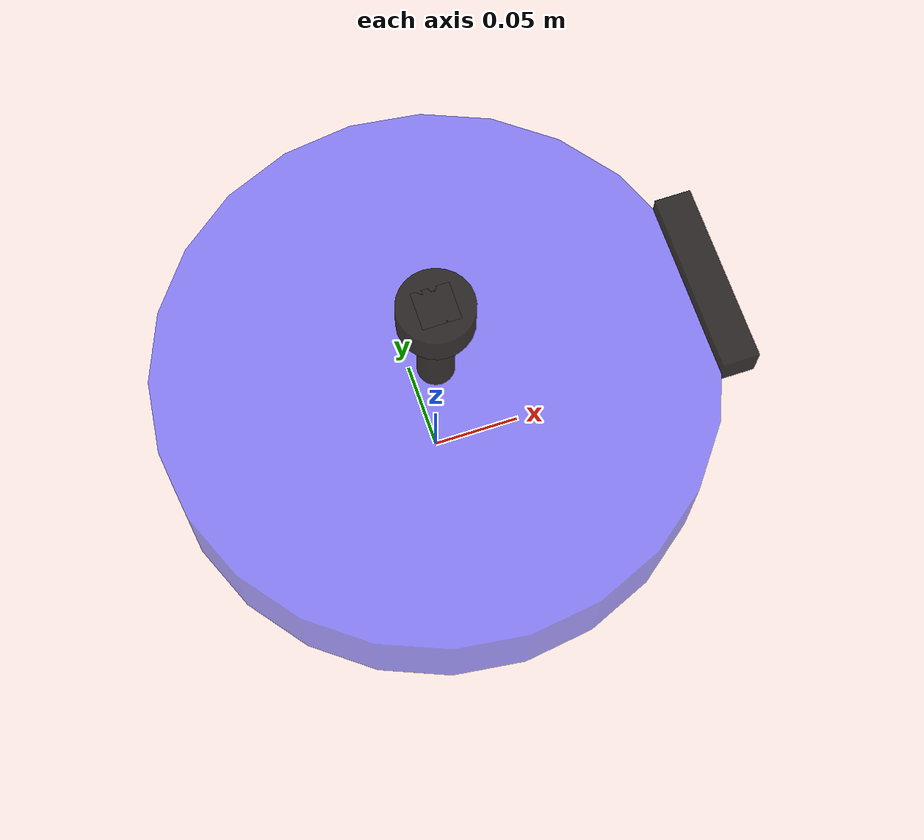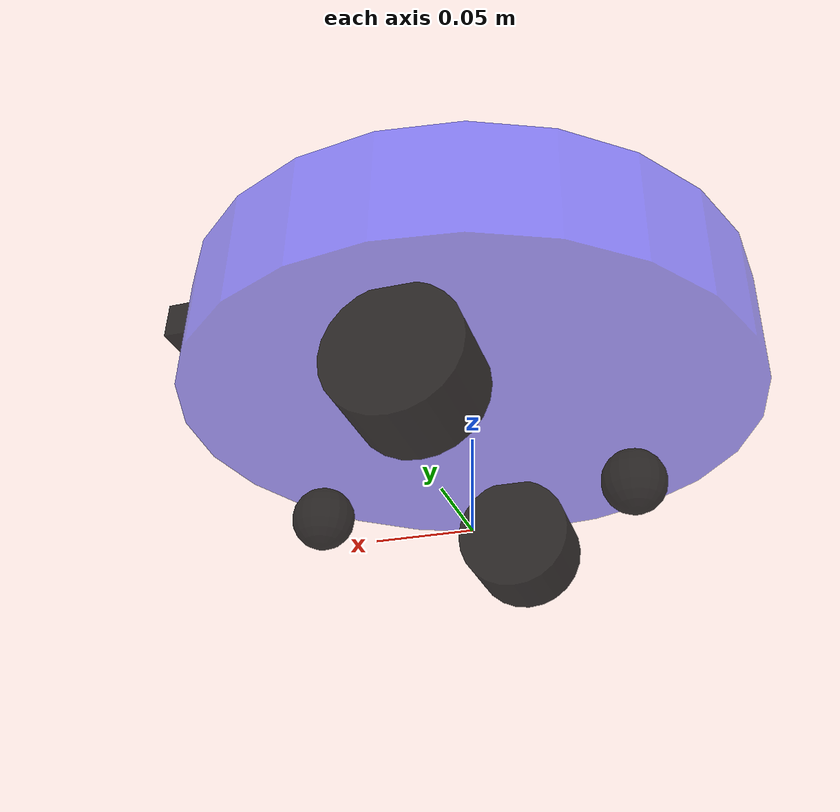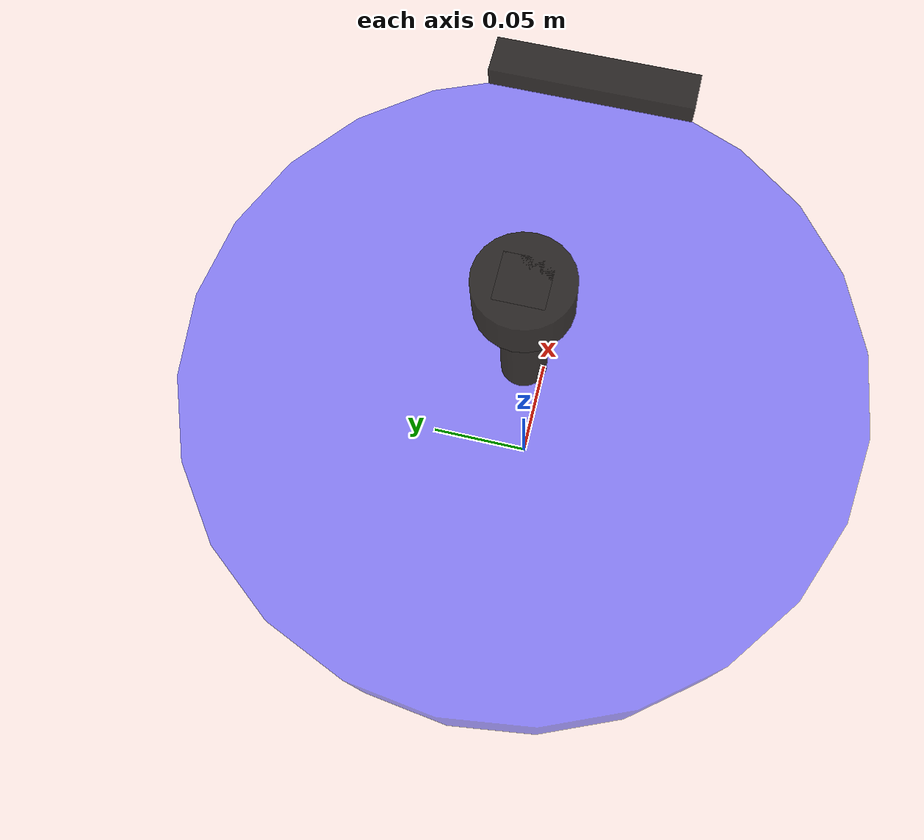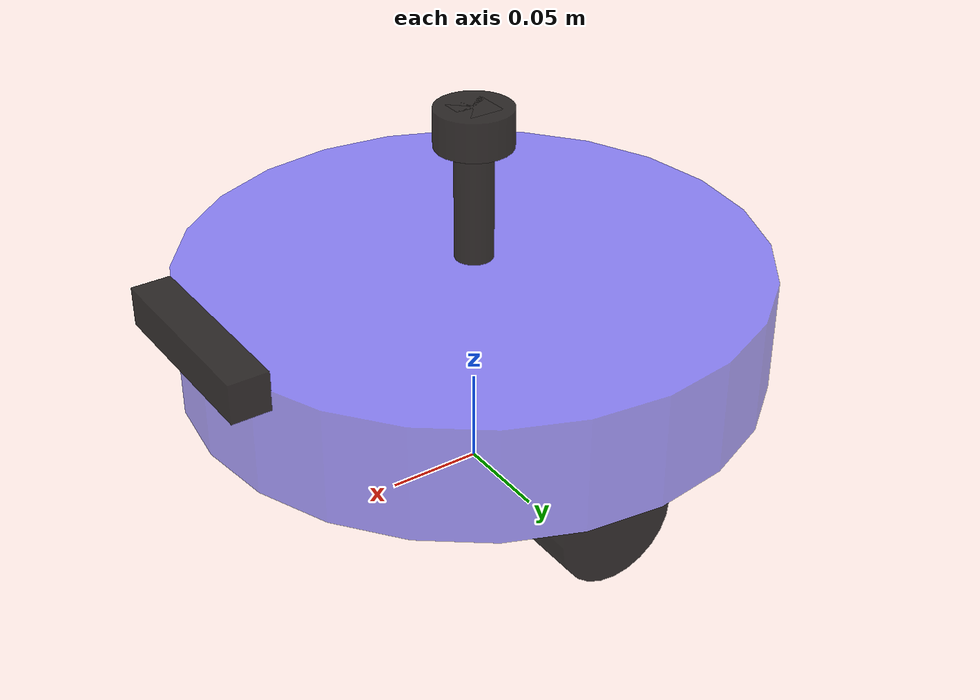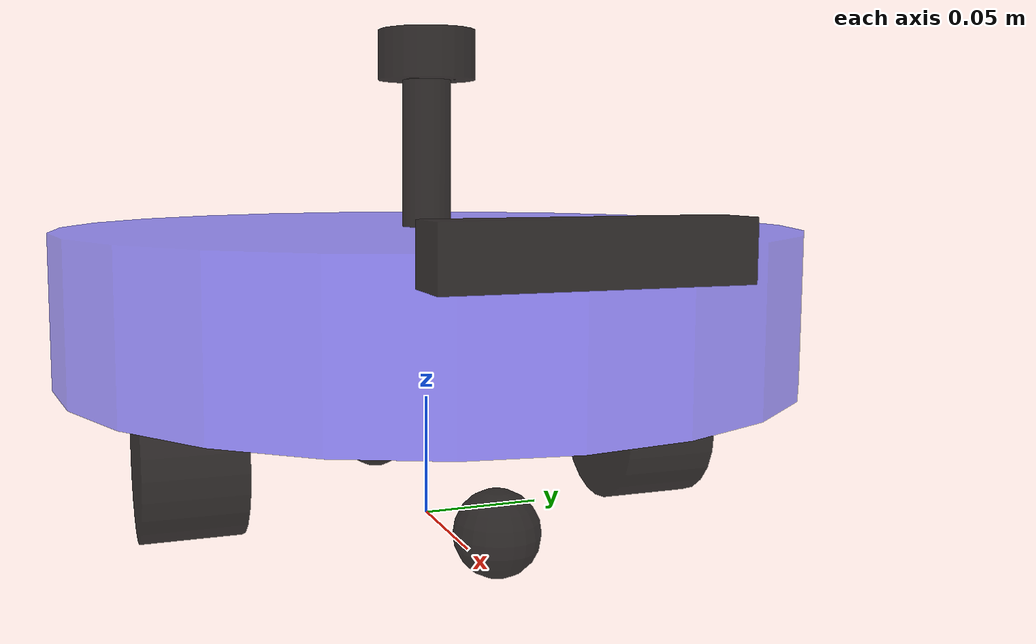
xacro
<?xml version="1.0"?>
<robot xmlns:xacro="http://www.ros.org/wiki/xacro" name="fishbot">
    <xacro:include filename="$(find gazebo_module)/urdf/fishbot/base.urdf.xacro" />
    <!-- 传感器组件 -->
    <xacro:include filename="$(find gazebo_module)/urdf/fishbot/sensor/imu.urdf.xacro" />
    <xacro:include filename="$(find gazebo_module)/urdf/fishbot/sensor/laser.urdf.xacro" />
    <xacro:include filename="$(find gazebo_module)/urdf/fishbot/sensor/camera.urdf.xacro" />
     <!-- 执行器组件 -->
    <xacro:include filename="$(find gazebo_module)/urdf/fishbot/actuator/wheel.urdf.xacro" />
    <xacro:include filename="$(find gazebo_module)/urdf/fishbot/actuator/caster.urdf.xacro" />

    <xacro:base_xacro length="0.06" radius="0.15" />
    <!-- 传感器 -->
    <xacro:imu_xacro xyz="0 0 0.10" />
    <xacro:laser_xacro xyz="0 0 0.05" />
    <xacro:camera_xacro xyz="0.15 0 0.03" />
    <!-- 执行器主动轮+从动轮 -->
    <xacro:wheel_xacro wheel_name="left" xyz="0 0.10 -0.06" />
    <xacro:wheel_xacro wheel_name="right" xyz="0 -0.10 -0.06" />
    <xacro:caster_xacro caster_name="front" xyz="0.08 0.0 -0.076" />
    <xacro:caster_xacro caster_name="back" xyz="-0.08 0.0 -0.076" />
    <!-- Gazebo 插件 -->
    <xacro:include filename="$(find gazebo_module)/urdf/fishbot/plugins/gazebo_control_plugin.xacro" />
    <xacro:gazebo_control_plugin />
    <xacro:include filename="$(find gazebo_module)/urdf/fishbot/fishbot.ros2_control.xacro" />
    <xacro:include filename="$(find gazebo_module)/urdf/fishbot/plugins/gazebo_sensor_plugin.xacro" />
    <xacro:gazebo_sensor_plugin />
</robot>

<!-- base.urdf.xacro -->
<robot xmlns:xacro="http://www.ros.org/wiki/xacro">
   <xacro:include filename="$(find gazebo_module)/urdf/fishbot/common_inertia.xacro" />
    <xacro:macro name="base_xacro" params="length radius">
     <link name="base_footprint" />

        <joint name="base_joint" type="fixed">
            <parent link="base_footprint" />
            <child link="base_link" />
            <origin xyz="0.0 0.0 0.092" rpy="0 0 0" />
        </joint>

        <link name="base_link">
            <visual>
                <origin xyz="0 0 0.0" rpy="0 0 0" />
                <geometry>
                    <cylinder length="${length}" radius="${radius}" />
                </geometry>
                <material name="blue">
                    <color rgba="0.1 0.1 1.0 0.5"/>
                </material>
            </visual>
            <collision>
                <origin xyz="0 0 0.0" rpy="0 0 0" />
                <geometry>
                    <cylinder length="${length}" radius="${radius}" />
                </geometry>
                <material name="blue">
                    <color rgba="0.1 0.1 1.0 0.5"/>
                </material>
            </collision>
            <xacro:cylinder_inertia m="1.0" r="${radius}" h="${length}"/>
        </link>

    </xacro:macro>

</robot>

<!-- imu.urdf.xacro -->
<robot xmlns:xacro="http://www.ros.org/wiki/xacro">
   <xacro:include filename="$(find gazebo_module)/urdf/fishbot/common_inertia.xacro" />
    <xacro:macro name="imu_xacro" params="xyz">
        <link name="imu_link">
            <visual>
                <origin xyz="0 0 00" rpy="0 0 0" />
                <geometry>
                    <box size="0.02 0.02 0.02" />
                </geometry>
                <material name="black">
                    <color rgba="0 0 0 0.8" />
                </material>
            </visual>
            <collision>
                <origin xyz="0 0 0" rpy="0 0 0" />
                <geometry>
                    <box size="0.02 0.02 0.02" />
                </geometry>
                <material name="black">
                    <color rgba="0 0 0 0.8" />
                </material>
            </collision>
            <xacro:box_inertia m="0.01" w="0.02" d="0.02" h="0.02"/>
        </link>

        <joint name="imu_joint" type="fixed">
            <parent link="base_link" />
            <child link="imu_link" />
            <origin xyz="${xyz}" />
        </joint>
    </xacro:macro>
</robot>

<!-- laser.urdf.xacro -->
<robot xmlns:xacro="http://www.ros.org/wiki/xacro">
   <xacro:include filename="$(find gazebo_module)/urdf/fishbot/common_inertia.xacro" />
    <xacro:macro name="laser_xacro" params="xyz">
        <gazebo reference="laser_cylinder_link">
            <material>Gazebo/Black</material>
        </gazebo>
        <gazebo reference="laser_link">
            <material>Gazebo/Black</material>
        </gazebo>

        <!-- ============雷达支撑杆================ -->
        <link name="laser_cylinder_link">
            <visual>
                <origin xyz="0 0 0" rpy="0 0 0" />
                <geometry>
                    <cylinder length="0.10" radius="0.01" />
                </geometry>
                <material name="black">
                    <color rgba="0.0 0.0 0.0 0.8" />
                </material>
            </visual>
            <collision>
                <origin xyz="0 0 0" rpy="0 0 0" />
                <geometry>
                    <cylinder length="0.10" radius="0.01" />
                </geometry>
                <material name="black">
                    <color rgba="0.0 0.0 0.0 0.8" />
                </material>
            </collision>
            <xacro:cylinder_inertia m="0.01" r="0.01" h="0.10" />
        </link>

        <joint name="laser_cylinder_joint" type="fixed">
            <parent link="base_link" />
            <child link="laser_cylinder_link" />
            <origin xyz="${xyz}" />
        </joint>

        <!-- ============雷达================ -->
        <link name="laser_link">
            <visual>
                <origin xyz="0 0 0" rpy="0 0 0" />
                <geometry>
                    <cylinder length="0.02" radius="0.02" />
                </geometry>
                <material name="black">
                    <color rgba="0.0 0.0 0.0 0.8" />
                </material>
            </visual>
            <collision>
                <origin xyz="0 0 0" rpy="0 0 0" />
                <geometry>
                    <cylinder length="0.02" radius="0.02" />
                </geometry>
                <material name="black">
                    <color rgba="0.0 0.0 0.0 0.8" />
                </material>
            </collision>
            <xacro:cylinder_inertia m="0.03" r="0.02" h="0.02" />
        </link>

        <joint name="laser_joint" type="fixed">
            <parent link="laser_cylinder_link" />
            <child link="laser_link" />
            <origin xyz="0 0 0.05" />
        </joint>

    </xacro:macro>

</robot>

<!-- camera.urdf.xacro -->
<robot xmlns:xacro="http://www.ros.org/wiki/xacro">
   <xacro:include filename="$(find gazebo_module)/urdf/fishbot/common_inertia.xacro" />
    <xacro:macro name="camera_xacro" params="xyz">
        <!-- ============相机模块================ -->
        <link name="camera_link">
            <visual>
                <origin xyz="0 0 0.0" rpy="0 0 0" />
                <geometry>
                    <box size="0.02 0.10 0.02" />
                </geometry>
                <material name="black">
                    <color rgba="0.0 0.0 0.0 0.8"/>
                </material>
            </visual>
            <collision>
                <origin xyz="0 0 0.0" rpy="0 0 0" />
                <geometry>
                    <box size="0.02 0.10 0.02" />
                </geometry>
                <material name="black">
                    <color rgba="0.0 0.0 0.0 0.8"/>
                </material>
            </collision>
            <xacro:box_inertia m="0.01" w="0.02" h="0.10" d="0.02" />
        </link>
        <link name="camera_optical_link"></link>
        <joint name="camera_optical_joint" type="fixed">
            <parent link="camera_link" />
            <child link="camera_optical_link" />
            <origin xyz="0 0 0" rpy="${-pi/2} 0 ${-pi/2}" />
        </joint>

        <joint name="camera_joint" type="fixed">
            <parent link="base_link" />
            <child link="camera_link" />
            <origin xyz="${xyz}" />
        </joint>
    </xacro:macro>

</robot>

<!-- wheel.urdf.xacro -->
<robot xmlns:xacro="http://www.ros.org/wiki/xacro">
   <xacro:include filename="$(find gazebo_module)/urdf/fishbot/common_inertia.xacro" />
    <xacro:macro name="wheel_xacro" params="wheel_name xyz">
        <link name="${wheel_name}_wheel_link">
            <visual>
                <origin xyz="0 0 0" rpy="1.57079 0 0" />
                <geometry>
                    <cylinder length="0.04" radius="0.032" />
                </geometry>
                <material name="black">
                    <color rgba="0.0 0.0 0.0 0.8"/>
                </material>
            </visual>
            <collision>
                <origin xyz="0 0 0" rpy="1.57079 0 0" />
                <geometry>
                    <cylinder length="0.04" radius="0.032" />
                </geometry>
                <material name="black">
                    <color rgba="0.0 0.0 0.0 0.8"/>
                </material>
            </collision>
            <xacro:cylinder_inertia m="0.1" h="0.04" r="0.032"/>
        </link>

        <gazebo reference="${wheel_name}_wheel_link">
            <surface>
                <friction>
                    <ode>
                        <mu>2.0</mu>
                        <mu2>2.0</mu2>
                        <fdir1>1 0 0</fdir1>
                        <slip1>0.0</slip1>
                        <slip2>0.0</slip2>
                    </ode>
                </friction>
                <contact>
                    <ode>
                        <kp>100000.0</kp>
                        <kd>10.0</kd>
                    </ode>
                </contact>
            </surface>
        </gazebo>

        <joint name="${wheel_name}_wheel_joint" type="continuous">
            <parent link="base_link" />
            <child link="${wheel_name}_wheel_link" />
            <origin xyz="${xyz}" />
            <axis xyz="0 1 0" />
        </joint>
    </xacro:macro>
</robot>

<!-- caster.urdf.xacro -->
<robot xmlns:xacro="http://www.ros.org/wiki/xacro">
   <xacro:include filename="$(find gazebo_module)/urdf/fishbot/common_inertia.xacro" />
    <xacro:macro name="caster_xacro" params="caster_name xyz">
        <link name="${caster_name}_caster_link">
            <visual>
                <origin xyz="0 0 0" rpy="0 0 0" />
                <geometry>
                    <sphere radius="0.016" />
                </geometry>
                <material name="black">
                    <color rgba="0.0 0.0 0.0 0.8"/>
                </material>
            </visual>
            <collision>
                <origin xyz="0 0 0" rpy="0 0 0" />
                <geometry>
                    <sphere radius="0.016" />
                </geometry>
                <material name="black">
                    <color rgba="0.0 0.0 0.0 0.8"/>
                </material>
            </collision>
            <xacro:sphere_inertia m="0.01" r="0.016" />
        </link>
        <gazebo reference="${caster_name}_caster_link">
            <mu1 value="0.0" />
            <mu2 value="0.0" />
            <kp value="1000000000.0" />
            <kd value="1.0" />
        </gazebo>

        <joint name="${caster_name}_caster_joint" type="fixed">
            <parent link="base_link" />
            <child link="${caster_name}_caster_link" />
            <origin xyz="${xyz}" />
            <axis xyz="0 0 0" />
        </joint>

    </xacro:macro>
</robot>
